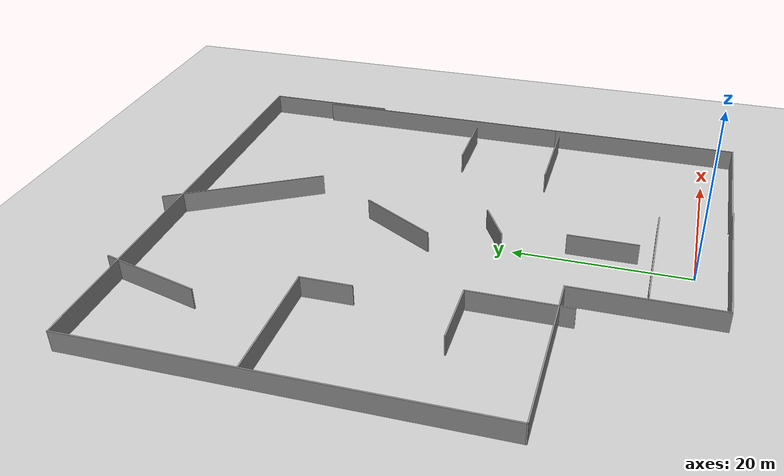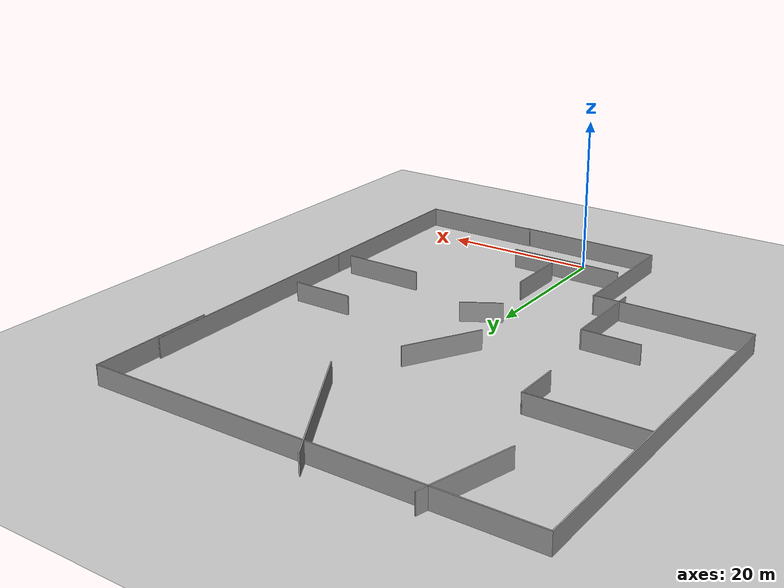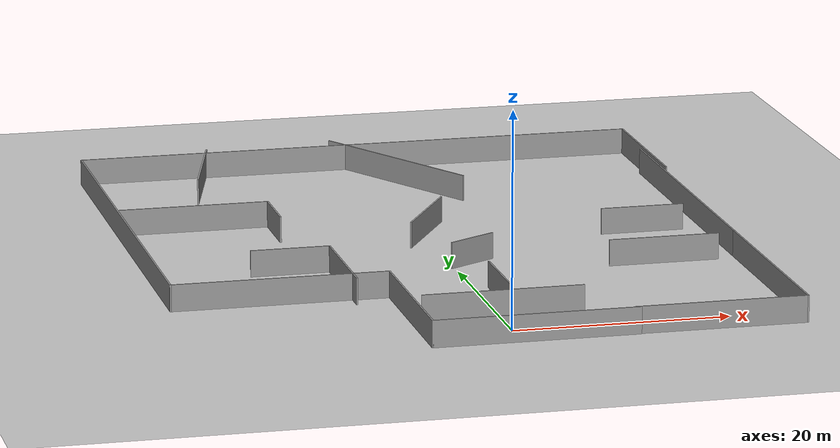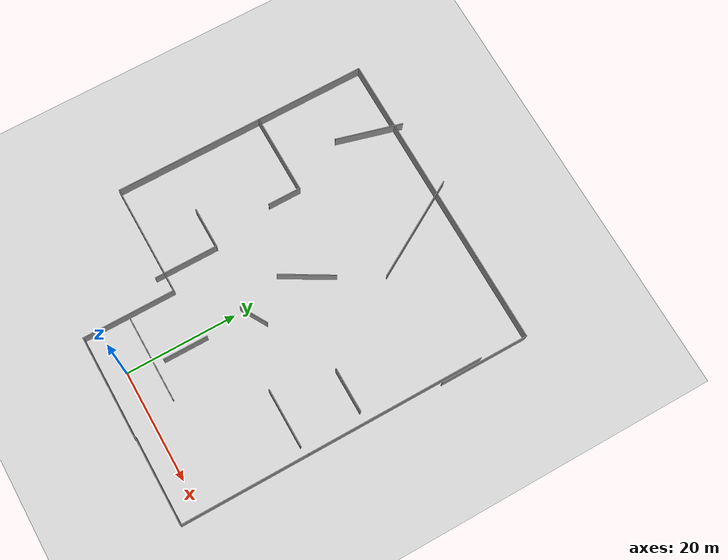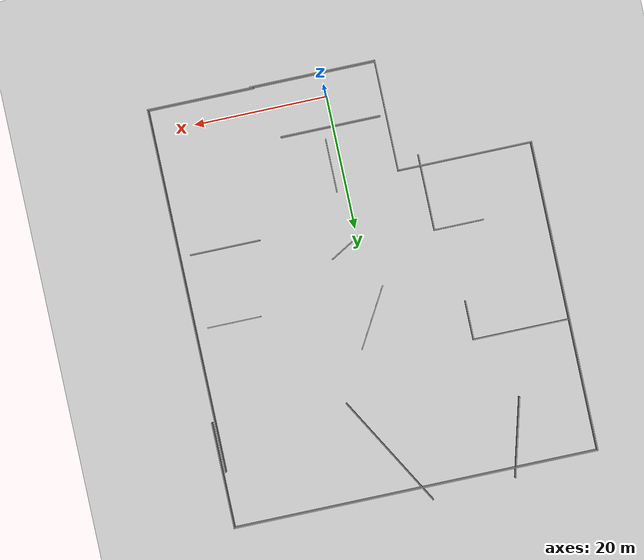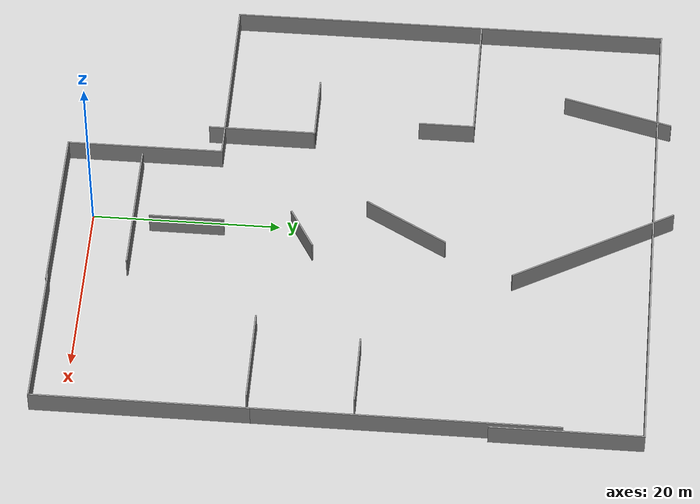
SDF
<sdf version="1.7">
 <world name="default">
  <light name="sun" type="directional">
   <pose>0 0 10 0 -0 0</pose>
   <diffuse>0.8 0.8 0.8 1</diffuse>
   <specular>0.2 0.2 0.2 1</specular>
   <attenuation>
    <range>1000</range>
    <constant>0.9</constant>
    <linear>0.01</linear>
    <quadratic>0.001</quadratic>
   </attenuation>
   <direction>-0.5 0.1 -0.9</direction>
   <spot><inner_angle>0</inner_angle><outer_angle>0</outer_angle><falloff>0</falloff></spot>
  </light>
  <model name="ground_plane">
   <static>1</static>
   <link name="link">
    <collision name="collision">
     <geometry><plane><normal>0 0 1</normal><size>100 100</size></plane></geometry>
     <surface><friction><ode><mu>100</mu><mu2>50</mu2></ode></friction></surface>
    </collision>
    <visual name="visual">
     <cast_shadows>0</cast_shadows>
     <geometry><plane><normal>0 0 1</normal><size>100 100</size></plane></geometry>
     <material>
      <script><uri>file://media/materials/scripts/gazebo.material</uri><name>Gazebo/Grey</name></script>
     </material>
    </visual>
   </link>
  </model>
  <gravity>0 0 -9.8</gravity>
  <magnetic_field>6e-06 2.3e-05 -4.2e-05</magnetic_field>
  <atmosphere type="adiabatic"/>
  <physics type="ode">
   <max_step_size>0.001</max_step_size>
   <real_time_factor>1</real_time_factor>
   <real_time_update_rate>1000</real_time_update_rate>
  </physics>
  <scene><ambient>0.4 0.4 0.4 1</ambient><background>0.7 0.7 0.7 1</background><shadows>1</shadows></scene>
  <audio><device>default</device></audio>
  <spherical_coordinates>
   <surface_model>EARTH_WGS84</surface_model>
   <latitude_deg>0</latitude_deg>
   <longitude_deg>0</longitude_deg>
   <elevation>0</elevation>
   <heading_deg>0</heading_deg>
  </spherical_coordinates>
  <model name="Untitled11">
   <pose>-0.75523 29.0573 0 0 -0 0</pose>
   <link name="Wall_11">
    <collision name="Wall_11_Collision">
     <geometry><box><size>16.75 0.15 2.5</size></box></geometry>
     <pose>0 0 1.25 0 -0 0</pose>
    </collision>
    <visual name="Wall_11_Visual">
     <pose>0 0 1.25 0 -0 0</pose>
     <geometry><box><size>16.75 0.15 2.5</size></box></geometry>
     <material>
      <script><uri>file://media/materials/scripts/gazebo.material</uri><name>Gazebo/Grey</name></script>
      <ambient>1 1 1 1</ambient>
     </material>
     <meta><layer>0</layer></meta>
    </visual>
    <pose>-7.325 -24.3341 0 0 -0 -1.5708</pose>
   </link>
   <link name="Wall_12">
    <collision name="Wall_12_Collision">
     <geometry><box><size>19 0.15 2.5</size></box></geometry>
     <pose>0 0 1.25 0 -0 0</pose>
    </collision>
    <visual name="Wall_12_Visual">
     <pose>0 0 1.25 0 -0 0</pose>
     <geometry><box><size>19 0.15 2.5</size></box></geometry>
     <material>
      <script><uri>file://media/materials/scripts/gazebo.material</uri><name>Gazebo/Grey</name></script>
      <ambient>1 1 1 1</ambient>
     </material>
     <meta><layer>0</layer></meta>
    </visual>
    <pose>2.1 -32.6341 0 0 -0 0</pose>
   </link>
   <link name="Wall_14">
    <collision name="Wall_14_Collision">
     <geometry><box><size>15 0.15 2.5</size></box></geometry>
     <pose>0 0 1.25 0 -0 0</pose>
    </collision>
    <visual name="Wall_14_Visual">
     <pose>0 0 1.25 0 -0 0</pose>
     <geometry><box><size>15 0.15 2.5</size></box></geometry>
     <material>
      <script><uri>file://media/materials/scripts/gazebo.material</uri><name>Gazebo/Grey</name></script>
      <ambient>1 1 1 1</ambient>
     </material>
     <meta><layer>0</layer></meta>
    </visual>
    <pose>1.09566 -24.4972 0 0 -0 0</pose>
   </link>
   <link name="Wall_16">
    <collision name="Wall_16_Collision">
     <geometry><box><size>16 0.15 2.5</size></box></geometry>
     <pose>0 0 1.25 0 -0 0</pose>
    </collision>
    <visual name="Wall_16_Visual">
     <pose>0 0 1.25 0 -0 0</pose>
     <geometry><box><size>16 0.15 2.5</size></box></geometry>
     <material>
      <script><uri>file://media/materials/scripts/gazebo.material</uri><name>Gazebo/Grey</name></script>
      <ambient>1 1 1 1</ambient>
     </material>
     <meta><layer>0</layer></meta>
    </visual>
    <pose>19.022 -32.5158 0 0 -0 0</pose>
   </link>
   <link name="Wall_17">
    <collision name="Wall_17_Collision">
     <geometry><box><size>23 0.15 2.5</size></box></geometry>
     <pose>0 0 1.25 0 -0 0</pose>
    </collision>
    <visual name="Wall_17_Visual">
     <pose>0 0 1.25 0 -0 0</pose>
     <geometry><box><size>23 0.15 2.5</size></box></geometry>
     <material>
      <script><uri>file://media/materials/scripts/gazebo.material</uri><name>Gazebo/Grey</name></script>
      <ambient>1 1 1 1</ambient>
     </material>
     <meta><layer>0</layer></meta>
    </visual>
    <pose>26.947 -21.0908 0 0 -0 1.5708</pose>
   </link>
   <link name="Wall_18">
    <collision name="Wall_18_Collision">
     <geometry><box><size>32 0.15 2.5</size></box></geometry>
     <pose>0 0 1.25 0 -0 0</pose>
    </collision>
    <visual name="Wall_18_Visual">
     <pose>0 0 1.25 0 -0 0</pose>
     <geometry><box><size>32 0.15 2.5</size></box></geometry>
     <material>
      <script><uri>file://media/materials/scripts/gazebo.material</uri><name>Gazebo/Grey</name></script>
      <ambient>1 1 1 1</ambient>
     </material>
     <meta><layer>0</layer></meta>
    </visual>
    <pose>26.947 6.25921 0 0 -0 1.5708</pose>
   </link>
   <link name="Wall_21">
    <collision name="Wall_21_Collision">
     <geometry><box><size>8 0.15 2.5</size></box></geometry>
     <pose>0 0 1.25 0 -0 0</pose>
    </collision>
    <visual name="Wall_21_Visual">
     <pose>0 0 1.25 0 -0 0</pose>
     <geometry><box><size>8 0.15 2.5</size></box></geometry>
     <material>
      <script><uri>file://media/materials/scripts/gazebo.material</uri><name>Gazebo/Grey</name></script>
      <ambient>1 1 1 1</ambient>
     </material>
     <meta><layer>0</layer></meta>
    </visual>
    <pose>2.19551 -18.8415 0 0 -0 1.5708</pose>
   </link>
   <link name="Wall_23">
    <collision name="Wall_23_Collision">
     <geometry><box><size>10.5 0.15 2.5</size></box></geometry>
     <pose>0 0 1.25 0 -0 0</pose>
    </collision>
    <visual name="Wall_23_Visual">
     <pose>0 0 1.25 0 -0 0</pose>
     <geometry><box><size>10.5 0.15 2.5</size></box></geometry>
     <material>
      <script><uri>file://media/materials/scripts/gazebo.material</uri><name>Gazebo/Grey</name></script>
      <ambient>1 1 1 1</ambient>
     </material>
     <meta><layer>0</layer></meta>
    </visual>
    <pose>20.0507 -10.2501 0 0 -0 3.14159</pose>
   </link>
   <link name="Wall_27">
    <collision name="Wall_27_Collision">
     <geometry><box><size>20.25 0.15 2.5</size></box></geometry>
     <pose>0 0 1.25 0 -0 0</pose>
    </collision>
    <visual name="Wall_27_Visual">
     <pose>0 0 1.25 0 -0 0</pose>
     <geometry><box><size>20.25 0.15 2.5</size></box></geometry>
     <material>
      <script><uri>file://media/materials/scripts/gazebo.material</uri><name>Gazebo/Grey</name></script>
      <ambient>1 1 1 1</ambient>
     </material>
     <meta><layer>0</layer></meta>
    </visual>
    <pose>-17.375 -16.0341 0 0 -0 3.14159</pose>
   </link>
   <link name="Wall_28">
    <collision name="Wall_28_Collision">
     <geometry><box><size>46.75 0.15 2.5</size></box></geometry>
     <pose>0 0 1.25 0 -0 0</pose>
    </collision>
    <visual name="Wall_28_Visual">
     <pose>0 0 1.25 0 -0 0</pose>
     <geometry><box><size>46.75 0.15 2.5</size></box></geometry>
     <material>
      <script><uri>file://media/materials/scripts/gazebo.material</uri><name>Gazebo/Grey</name></script>
      <ambient>1 1 1 1</ambient>
     </material>
     <meta><layer>0</layer></meta>
    </visual>
    <pose>-27.425 7.26587 0 0 -0 1.5708</pose>
   </link>
   <link name="Wall_29">
    <collision name="Wall_29_Collision">
     <geometry><box><size>55 0.15 2.5</size></box></geometry>
     <pose>0 0 1.25 0 -0 0</pose>
    </collision>
    <visual name="Wall_29_Visual">
     <pose>0 0 1.25 0 -0 0</pose>
     <geometry><box><size>55 0.15 2.5</size></box></geometry>
     <material>
      <script><uri>file://media/materials/scripts/gazebo.material</uri><name>Gazebo/Grey</name></script>
      <ambient>1 1 1 1</ambient>
     </material>
     <meta><layer>0</layer></meta>
    </visual>
    <pose>1e-06 30.5659 0 0 -0 0</pose>
   </link>
   <link name="Wall_30">
    <collision name="Wall_30_Collision">
     <geometry><box><size>16 0.15 2.5</size></box></geometry>
     <pose>0 0 1.25 0 -0 0</pose>
    </collision>
    <visual name="Wall_30_Visual">
     <pose>0 0 1.25 0 -0 0</pose>
     <geometry><box><size>16 0.15 2.5</size></box></geometry>
     <material>
      <script><uri>file://media/materials/scripts/gazebo.material</uri><name>Gazebo/Grey</name></script>
      <ambient>1 1 1 1</ambient>
     </material>
     <meta><layer>0</layer></meta>
    </visual>
    <pose>27.425 22.6409 0 0 -0 -1.5708</pose>
   </link>
   <link name="Wall_32">
    <collision name="Wall_32_Collision">
     <geometry><box><size>11.5 0.15 2.5</size></box></geometry>
     <pose>0 0 1.25 0 -0 0</pose>
    </collision>
    <visual name="Wall_32_Visual">
     <pose>0 0 1.25 0 -0 0</pose>
     <geometry><box><size>11.5 0.15 2.5</size></box></geometry>
     <material>
      <script><uri>file://media/materials/scripts/gazebo.material</uri><name>Gazebo/Grey</name></script>
      <ambient>1 1 1 1</ambient>
     </material>
     <meta><layer>0</layer></meta>
    </visual>
    <pose>-10.7109 -11.9814 0 0 -0 1.5708</pose>
   </link>
   <link name="Wall_33">
    <collision name="Wall_33_Collision">
     <geometry><box><size>7.5 0.15 2.5</size></box></geometry>
     <pose>0 0 1.25 0 -0 0</pose>
    </collision>
    <visual name="Wall_33_Visual">
     <pose>0 0 1.25 0 -0 0</pose>
     <geometry><box><size>7.5 0.15 2.5</size></box></geometry>
     <material>
      <script><uri>file://media/materials/scripts/gazebo.material</uri><name>Gazebo/Grey</name></script>
      <ambient>1 1 1 1</ambient>
     </material>
     <meta><layer>0</layer></meta>
    </visual>
    <pose>-14.3859 -6.30642 0 0 -0 3.14159</pose>
   </link>
   <link name="Wall_38">
    <collision name="Wall_38_Collision">
     <geometry><box><size>8 0.15 2.5</size></box></geometry>
     <pose>0 0 1.25 0 -0 0</pose>
    </collision>
    <visual name="Wall_38_Visual">
     <pose>0 0 1.25 0 -0 0</pose>
     <geometry><box><size>8 0.15 2.5</size></box></geometry>
     <material>
      <script><uri>file://media/materials/scripts/gazebo.material</uri><name>Gazebo/Grey</name></script>
      <ambient>1 1 1 1</ambient>
     </material>
     <meta><layer>0</layer></meta>
    </visual>
    <pose>21.0703 0.825034 0 0 -0 3.14159</pose>
   </link>
   <link name="Wall_40">
    <collision name="Wall_40_Collision">
     <geometry><box><size>19.25 0.15 2.5</size></box></geometry>
     <pose>0 0 1.25 0 -0 0</pose>
    </collision>
    <visual name="Wall_40_Visual">
     <pose>0 0 1.25 0 -0 0</pose>
     <geometry><box><size>19.25 0.15 2.5</size></box></geometry>
     <material>
      <script><uri>file://media/materials/scripts/gazebo.material</uri><name>Gazebo/Grey</name></script>
      <ambient>1 1 1 1</ambient>
     </material>
     <meta><layer>0</layer></meta>
    </visual>
    <pose>2.6235 24.3361 0 0 -0 -1.0472</pose>
   </link>
   <link name="Wall_42">
    <collision name="Wall_42_Collision">
     <geometry><box><size>12 0.15 2.5</size></box></geometry>
     <pose>0 0 1.25 0 -0 0</pose>
    </collision>
    <visual name="Wall_42_Visual">
     <pose>0 0 1.25 0 -0 0</pose>
     <geometry><box><size>12 0.15 2.5</size></box></geometry>
     <material>
      <script><uri>file://media/materials/scripts/gazebo.material</uri><name>Gazebo/Grey</name></script>
      <ambient>1 1 1 1</ambient>
     </material>
     <meta><layer>0</layer></meta>
    </visual>
    <pose>-16.2652 26.2215 0 0 -0 -1.8326</pose>
   </link>
   <link name="Wall_44">
    <collision name="Wall_44_Collision">
     <geometry><box><size>14.5 0.15 2.5</size></box></geometry>
     <pose>0 0 1.25 0 -0 0</pose>
    </collision>
    <visual name="Wall_44_Visual">
     <pose>0 0 1.25 0 -0 0</pose>
     <geometry><box><size>14.5 0.15 2.5</size></box></geometry>
     <material>
      <script><uri>file://media/materials/scripts/gazebo.material</uri><name>Gazebo/Grey</name></script>
      <ambient>1 1 1 1</ambient>
     </material>
     <meta><layer>0</layer></meta>
    </visual>
    <pose>-20.137 10.7568 0 0 -0 0</pose>
   </link>
   <link name="Wall_45">
    <collision name="Wall_45_Collision">
     <geometry><box><size>6 0.15 2.5</size></box></geometry>
     <pose>0 0 1.25 0 -0 0</pose>
    </collision>
    <visual name="Wall_45_Visual">
     <pose>0 0 1.25 0 -0 0</pose>
     <geometry><box><size>6 0.15 2.5</size></box></geometry>
     <material>
      <script><uri>file://media/materials/scripts/gazebo.material</uri><name>Gazebo/Grey</name></script>
      <ambient>1 1 1 1</ambient>
     </material>
     <meta><layer>0</layer></meta>
    </visual>
    <pose>-12.962 7.8318 0 0 -0 -1.5708</pose>
   </link>
   <link name="Wall_47">
    <collision name="Wall_47_Collision">
     <geometry><box><size>10 0.15 2.5</size></box></geometry>
     <pose>0 0 1.25 0 -0 0</pose>
    </collision>
    <visual name="Wall_47_Visual">
     <pose>0 0 1.25 0 -0 0</pose>
     <geometry><box><size>10 0.15 2.5</size></box></geometry>
     <material>
      <script><uri>file://media/materials/scripts/gazebo.material</uri><name>Gazebo/Grey</name></script>
      <ambient>1 1 1 1</ambient>
     </material>
     <meta><layer>0</layer></meta>
    </visual>
    <pose>0.973122 4.42809 0 0 -0 1.0472</pose>
   </link>
   <link name="Wall_49">
    <collision name="Wall_49_Collision">
     <geometry><box><size>5.25 0.15 2.5</size></box></geometry>
     <pose>0 0 1.25 0 -0 0</pose>
    </collision>
    <visual name="Wall_49_Visual">
     <pose>0 0 1.25 0 -0 0</pose>
     <geometry><box><size>5.25 0.15 2.5</size></box></geometry>
     <material>
      <script><uri>file://media/materials/scripts/gazebo.material</uri><name>Gazebo/Grey</name></script>
      <ambient>1 1 1 1</ambient>
     </material>
     <meta><layer>0</layer></meta>
    </visual>
    <pose>2.70534 -6.5075 0 0 -0 0.523599</pose>
   </link>
   <static>1</static>
  </model>
 </world>
</sdf>
